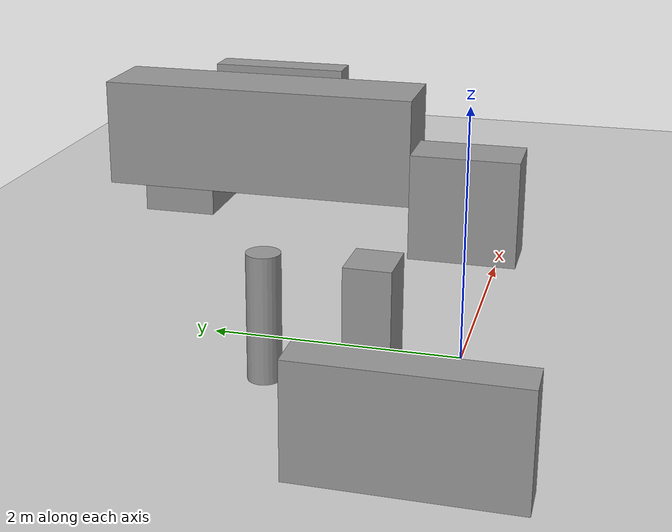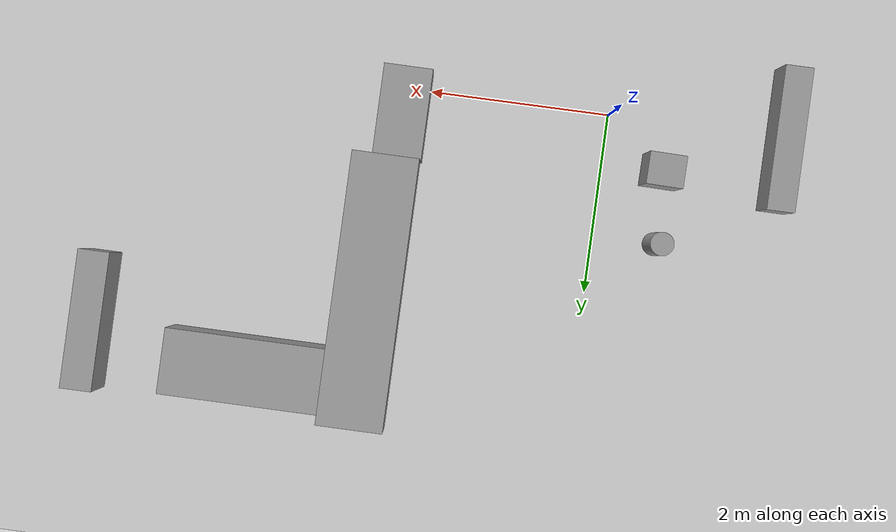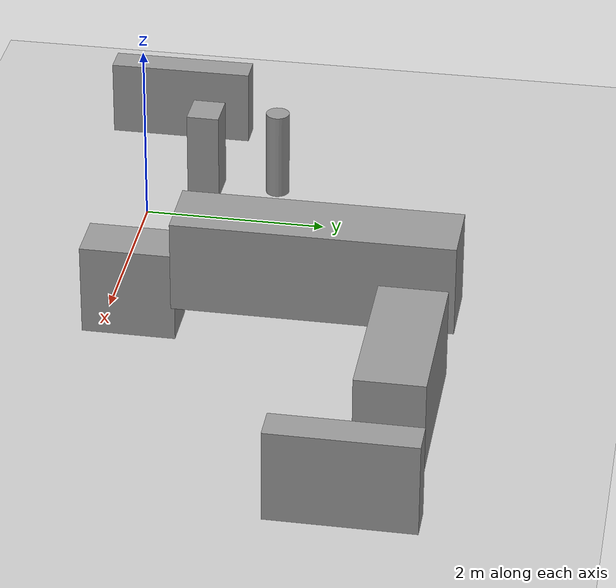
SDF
<sdf version="1.9">
 <world name="default">
  <model name="ground_plane">
   <static>true</static>
   <link name="link">
    <collision name="collision">
     <geometry><plane><normal>0 0 1</normal><size>100 100</size></plane></geometry>
     <surface><friction><ode><mu>100</mu><mu2>50</mu2></ode></friction></surface>
    </collision>
    <visual name="visual">
     <cast_shadows>false</cast_shadows>
     <geometry><plane><normal>0 0 1</normal><size>100 100</size></plane></geometry>
     <material>
      <script><uri>file://media/materials/scripts/gazebo.material</uri><name>Gazebo/Grey</name></script>
     </material>
    </visual>
   </link>
  </model>
  <model name="cma_lixo_0">
   <link name="link_1">
    <pose>0.88296200000000002 1.81586 0.5 0 0 0</pose>
    <inertial>
     <mass>0.068764400000000003</mass>
     <inertia>
      <ixx>0.00602588</ixx>
      <ixy>0</ixy>
      <ixz>0</ixz>
      <iyy>0.00602588</iyy>
      <iyz>0</iyz>
      <izz>0.00059106800000000004</izz>
     </inertia>
    </inertial>
    <visual name="visual">
     <geometry><cylinder><radius>0.13111200000000001</radius><length>1</length></cylinder></geometry>
     <material>
      <lighting>true</lighting>
      <script><uri>file://media/materials/scripts/gazebo.material</uri><name>Gazebo/Grey</name></script>
      <ambient>0.300000012 0.300000012 0.300000012 1</ambient>
      <diffuse>0.699999988 0.699999988 0.699999988 1</diffuse>
      <specular>0.00999999978 0.00999999978 0.00999999978 1</specular>
      <emissive>0 0 0 1</emissive>
     </material>
    </visual>
    <collision name="collision">
     <geometry><cylinder><radius>0.13111200000000001</radius><length>1</length></cylinder></geometry>
     <surface>
      <friction>
       <ode><mu>1</mu><mu2>1</mu2><fdir1>0 0 0</fdir1><slip1>0</slip1><slip2>0</slip2></ode>
       <torsional>
        <coefficient>1</coefficient>
        <patch_radius>0</patch_radius>
        <surface_radius>0</surface_radius>
        <use_patch_radius>true</use_patch_radius>
        <ode><slip>0</slip></ode>
       </torsional>
      </friction>
      <bounce><restitution_coefficient>0</restitution_coefficient><threshold>1000000</threshold></bounce>
      <contact>
       <collide_without_contact>false</collide_without_contact>
       <collide_without_contact_bitmask>1</collide_without_contact_bitmask>
       <collide_bitmask>1</collide_bitmask>
       <ode>
        <soft_cfm>0</soft_cfm>
        <soft_erp>0.20000000000000001</soft_erp>
        <kp>10000000000000</kp>
        <kd>1</kd>
        <max_vel>0.01</max_vel>
        <min_depth>0</min_depth>
       </ode>
       <bullet>
        <split_impulse>true</split_impulse>
        <split_impulse_penetration_threshold>-0.01</split_impulse_penetration_threshold>
        <soft_cfm>0</soft_cfm>
        <soft_erp>0.20000000000000001</soft_erp>
        <kp>10000000000000</kp>
        <kd>1</kd>
       </bullet>
      </contact>
     </surface>
    </collision>
   </link>
   <static>false</static>
   <pose>-1.6093500000000001 -0.44273099999999999 -7.9999999999999996e-06 0 0 -0.0097769999999999992</pose>
  </model>
  <model name="cma_gaveteiro_pequeno_e">
   <link name="link_1">
    <pose>9.9999999999999995e-07 -3.0000000000000001e-06 0 0 0 0</pose>
    <inertial>
     <mass>0.14553199999999999</mass>
     <inertia>
      <ixx>0.0136813</ixx>
      <ixy>0</ixy>
      <ixz>0</ixz>
      <iyy>0.0141327</iyy>
      <iyz>0</iyz>
      <izz>0.0035586599999999999</izz>
     </inertia>
    </inertial>
    <visual name="visual">
     <geometry><box><size>0.40660000000000002 0.35791800000000001 1</size></box></geometry>
     <material>
      <lighting>true</lighting>
      <script><uri>file://media/materials/scripts/gazebo.material</uri><name>Gazebo/Grey</name></script>
      <ambient>0.300000012 0.300000012 0.300000012 1</ambient>
      <diffuse>0.699999988 0.699999988 0.699999988 1</diffuse>
      <specular>0.00999999978 0.00999999978 0.00999999978 1</specular>
      <emissive>0 0 0 1</emissive>
     </material>
    </visual>
    <collision name="collision">
     <geometry><box><size>0.40660000000000002 0.35791800000000001 1</size></box></geometry>
     <surface>
      <friction>
       <ode><mu>1</mu><mu2>1</mu2><fdir1>0 0 0</fdir1><slip1>0</slip1><slip2>0</slip2></ode>
       <torsional>
        <coefficient>1</coefficient>
        <patch_radius>0</patch_radius>
        <surface_radius>0</surface_radius>
        <use_patch_radius>true</use_patch_radius>
        <ode><slip>0</slip></ode>
       </torsional>
      </friction>
      <bounce><restitution_coefficient>0</restitution_coefficient><threshold>1000000</threshold></bounce>
      <contact>
       <collide_without_contact>false</collide_without_contact>
       <collide_without_contact_bitmask>1</collide_without_contact_bitmask>
       <collide_bitmask>1</collide_bitmask>
       <ode>
        <soft_cfm>0</soft_cfm>
        <soft_erp>0.20000000000000001</soft_erp>
        <kp>10000000000000</kp>
        <kd>1</kd>
        <max_vel>0.01</max_vel>
        <min_depth>0</min_depth>
       </ode>
       <bullet>
        <split_impulse>true</split_impulse>
        <split_impulse_penetration_threshold>-0.01</split_impulse_penetration_threshold>
        <soft_cfm>0</soft_cfm>
        <soft_erp>0.20000000000000001</soft_erp>
        <kp>10000000000000</kp>
        <kd>1</kd>
       </bullet>
      </contact>
     </surface>
    </collision>
   </link>
   <static>false</static>
   <pose>-0.653034 0.55876899999999996 0.49999900000000003 -9.9999999999999974e-07 3.9999999999999998e-06 -0.015254999999999998</pose>
  </model>
  <model name="cma_armario_coz_190x70cm">
   <link name="link_0">
    <pose>5.2095799999999999 2.97661 0.5 0 0 -1.5706800000000001</pose>
    <inertial>
     <mass>1.2966</mass>
     <inertia>
      <ixx>0.45447700000000002</ixx>
      <ixy>0</ixy>
      <ixz>0</ixz>
      <iyy>0.16470599999999999</iyy>
      <iyz>0</iyz>
      <izz>0.403084</izz>
     </inertia>
    </inertial>
    <visual name="visual">
     <geometry><box><size>0.72418400000000005 1.7905800000000001 1</size></box></geometry>
     <material>
      <lighting>true</lighting>
      <script><uri>file://media/materials/scripts/gazebo.material</uri><name>Gazebo/Grey</name></script>
      <ambient>0.300000012 0.300000012 0.300000012 1</ambient>
      <diffuse>0.699999988 0.699999988 0.699999988 1</diffuse>
      <specular>0.00999999978 0.00999999978 0.00999999978 1</specular>
      <emissive>0 0 0 1</emissive>
     </material>
    </visual>
    <collision name="collision">
     <geometry><box><size>0.72418400000000005 1.7905800000000001 1</size></box></geometry>
     <surface>
      <friction>
       <ode><mu>1</mu><mu2>1</mu2><fdir1>0 0 0</fdir1><slip1>0</slip1><slip2>0</slip2></ode>
       <torsional>
        <coefficient>1</coefficient>
        <patch_radius>0</patch_radius>
        <surface_radius>0</surface_radius>
        <use_patch_radius>true</use_patch_radius>
        <ode><slip>0</slip></ode>
       </torsional>
      </friction>
      <bounce><restitution_coefficient>0</restitution_coefficient><threshold>1000000</threshold></bounce>
      <contact>
       <collide_without_contact>false</collide_without_contact>
       <collide_without_contact_bitmask>1</collide_without_contact_bitmask>
       <collide_bitmask>1</collide_bitmask>
       <ode>
        <soft_cfm>0</soft_cfm>
        <soft_erp>0.20000000000000001</soft_erp>
        <kp>10000000000000</kp>
        <kd>1</kd>
        <max_vel>0.01</max_vel>
        <min_depth>0</min_depth>
       </ode>
       <bullet>
        <split_impulse>true</split_impulse>
        <split_impulse_penetration_threshold>-0.01</split_impulse_penetration_threshold>
        <soft_cfm>0</soft_cfm>
        <soft_erp>0.20000000000000001</soft_erp>
        <kp>10000000000000</kp>
        <kd>1</kd>
       </bullet>
      </contact>
     </surface>
    </collision>
   </link>
   <model name="cma_armario_coz_100x50cm">
    <link name="link_0">
     <pose>-3.0000000000000001e-06 -3.0000000000000001e-06 0 0 0 0</pose>
     <inertial>
      <mass>0.53619300000000003</mass>
      <inertia>
       <ixx>0.089365700000000006</ixx>
       <ixy>0</ixy>
       <ixz>0</ixz>
       <iyy>0.057529299999999998</iyy>
       <iyz>0</iyz>
       <izz>0.057529299999999998</izz>
      </inertia>
     </inertial>
     <visual name="visual">
      <geometry><box><size>0.53619300000000003 1 1</size></box></geometry>
      <material>
       <lighting>true</lighting>
       <script><uri>file://media/materials/scripts/gazebo.material</uri><name>Gazebo/Grey</name></script>
       <ambient>0.300000012 0.300000012 0.300000012 1</ambient>
       <diffuse>0.699999988 0.699999988 0.699999988 1</diffuse>
       <specular>0.00999999978 0.00999999978 0.00999999978 1</specular>
       <emissive>0 0 0 1</emissive>
      </material>
     </visual>
     <collision name="collision">
      <geometry><box><size>0.53619300000000003 1 1</size></box></geometry>
      <surface>
       <friction>
        <ode><mu>1</mu><mu2>1</mu2><fdir1>0 0 0</fdir1><slip1>0</slip1><slip2>0</slip2></ode>
        <torsional>
         <coefficient>1</coefficient>
         <patch_radius>0</patch_radius>
         <surface_radius>0</surface_radius>
         <use_patch_radius>true</use_patch_radius>
         <ode><slip>0</slip></ode>
        </torsional>
       </friction>
       <bounce><restitution_coefficient>0</restitution_coefficient><threshold>1000000</threshold></bounce>
       <contact>
        <collide_without_contact>false</collide_without_contact>
        <collide_without_contact_bitmask>1</collide_without_contact_bitmask>
        <collide_bitmask>1</collide_bitmask>
        <ode>
         <soft_cfm>0</soft_cfm>
         <soft_erp>0.20000000000000001</soft_erp>
         <kp>10000000000000</kp>
         <kd>1</kd>
         <max_vel>0.01</max_vel>
         <min_depth>0</min_depth>
        </ode>
        <bullet>
         <split_impulse>true</split_impulse>
         <split_impulse_penetration_threshold>-0.01</split_impulse_penetration_threshold>
         <soft_cfm>0</soft_cfm>
         <soft_erp>0.20000000000000001</soft_erp>
         <kp>10000000000000</kp>
         <kd>1</kd>
        </bullet>
       </contact>
      </surface>
     </collision>
    </link>
    <static>false</static>
    <pose>3.8645499999999999 -0.048915 0.5 0 0 0</pose>
   </model>
   <model name="cma_armario_coz_300x70cm">
    <link name="link_0">
     <pose>3.2642799999999998 1.5085599999999999 0.5 0 0 0</pose>
     <inertial>
      <mass>2.1383299999999998</mass>
      <inertia>
       <ixx>1.732</ixx>
       <ixy>0</ixy>
       <ixz>0</ixz>
       <iyy>0.27163700000000002</iyy>
       <iyz>0</iyz>
       <izz>1.6472500000000001</izz>
      </inertia>
     </inertial>
     <visual name="visual">
      <geometry><box><size>0.72418400000000005 2.9529000000000001 1</size></box></geometry>
      <material>
       <lighting>true</lighting>
       <script><uri>file://media/materials/scripts/gazebo.material</uri><name>Gazebo/Grey</name></script>
       <ambient>0.300000012 0.300000012 0.300000012 1</ambient>
       <diffuse>0.699999988 0.699999988 0.699999988 1</diffuse>
       <specular>0.00999999978 0.00999999978 0.00999999978 1</specular>
       <emissive>0 0 0 1</emissive>
      </material>
     </visual>
     <collision name="collision">
      <geometry><box><size>0.72418400000000005 2.9529000000000001 1</size></box></geometry>
      <surface>
       <friction>
        <ode><mu>1</mu><mu2>1</mu2><fdir1>0 0 0</fdir1><slip1>0</slip1><slip2>0</slip2></ode>
        <torsional>
         <coefficient>1</coefficient>
         <patch_radius>0</patch_radius>
         <surface_radius>0</surface_radius>
         <use_patch_radius>true</use_patch_radius>
         <ode><slip>0</slip></ode>
        </torsional>
       </friction>
       <bounce><restitution_coefficient>0</restitution_coefficient><threshold>1000000</threshold></bounce>
       <contact>
        <collide_without_contact>false</collide_without_contact>
        <collide_without_contact_bitmask>1</collide_without_contact_bitmask>
        <collide_bitmask>1</collide_bitmask>
        <ode>
         <soft_cfm>0</soft_cfm>
         <soft_erp>0.20000000000000001</soft_erp>
         <kp>10000000000000</kp>
         <kd>1</kd>
         <max_vel>0.01</max_vel>
         <min_depth>0</min_depth>
        </ode>
        <bullet>
         <split_impulse>true</split_impulse>
         <split_impulse_penetration_threshold>-0.01</split_impulse_penetration_threshold>
         <soft_cfm>0</soft_cfm>
         <soft_erp>0.20000000000000001</soft_erp>
         <kp>10000000000000</kp>
         <kd>1</kd>
        </bullet>
       </contact>
      </surface>
     </collision>
    </link>
    <static>false</static>
    <pose>0.70628899999999994 0.41883100000000001 0.5 0 0 0</pose>
   </model>
   <static>false</static>
   <pose>-1.5917699999999999 0.36982399999999999 0 0 0 -0.0010590000000000003</pose>
  </model>
  <model name="cma_armario_coz_150x20cm">
   <link name="link_1">
    <pose>7.1868600000000002 2.7524700000000002 0.5 0 0 0</pose>
    <inertial>
     <mass>0.53157299999999996</mass>
     <inertia>
      <ixx>0.147651</ixx>
      <ixy>0</ixy>
      <ixz>0</ixz>
      <iyy>0.0496628</iyy>
      <iyz>0</iyz>
      <izz>0.108718</izz>
     </inertia>
    </inertial>
    <visual name="visual">
     <geometry><box><size>0.34802300000000003 1.52746 1</size></box></geometry>
     <material>
      <lighting>true</lighting>
      <script><uri>file://media/materials/scripts/gazebo.material</uri><name>Gazebo/Grey</name></script>
      <ambient>0.300000012 0.300000012 0.300000012 1</ambient>
      <diffuse>0.699999988 0.699999988 0.699999988 1</diffuse>
      <specular>0.00999999978 0.00999999978 0.00999999978 1</specular>
      <emissive>0 0 0 1</emissive>
     </material>
    </visual>
    <collision name="collision">
     <geometry><box><size>0.34802300000000003 1.52746 1</size></box></geometry>
     <surface>
      <friction>
       <ode><mu>1</mu><mu2>1</mu2><fdir1>0 0 0</fdir1><slip1>0</slip1><slip2>0</slip2></ode>
       <torsional>
        <coefficient>1</coefficient>
        <patch_radius>0</patch_radius>
        <surface_radius>0</surface_radius>
        <use_patch_radius>true</use_patch_radius>
        <ode><slip>0</slip></ode>
       </torsional>
      </friction>
      <bounce><restitution_coefficient>0</restitution_coefficient><threshold>1000000</threshold></bounce>
      <contact>
       <collide_without_contact>false</collide_without_contact>
       <collide_without_contact_bitmask>1</collide_without_contact_bitmask>
       <collide_bitmask>1</collide_bitmask>
       <ode>
        <soft_cfm>0</soft_cfm>
        <soft_erp>0.20000000000000001</soft_erp>
        <kp>10000000000000</kp>
        <kd>1</kd>
        <max_vel>0.01</max_vel>
        <min_depth>0</min_depth>
       </ode>
       <bullet>
        <split_impulse>true</split_impulse>
        <split_impulse_penetration_threshold>-0.01</split_impulse_penetration_threshold>
        <soft_cfm>0</soft_cfm>
        <soft_erp>0.20000000000000001</soft_erp>
        <kp>10000000000000</kp>
        <kd>1</kd>
       </bullet>
      </contact>
     </surface>
    </collision>
   </link>
   <static>false</static>
   <pose>-1.7943100000000001 0.26466000000000001 0 0 0 3.0000000000000001e-06</pose>
  </model>
  <model name="cma_bans_a1">
   <link name="link_0">
    <pose>-9.9999999999999995e-07 0 0 0 0 0</pose>
    <inertial>
     <mass>0.42531200000000002</mass>
     <inertia>
      <ixx>0.116443</ixx>
      <ixy>0</ixy>
      <ixz>0</ixz>
      <iyy>0.029397199999999998</iyy>
      <iyz>0</iyz>
      <izz>0.093901600000000002</izz>
     </inertia>
    </inertial>
    <visual name="visual">
     <geometry><box><size>0.31099700000000002 1.59771 0.85598300000000005</size></box></geometry>
     <material>
      <lighting>true</lighting>
      <script><uri>file://media/materials/scripts/gazebo.material</uri><name>Gazebo/Grey</name></script>
      <ambient>0.300000012 0.300000012 0.300000012 1</ambient>
      <diffuse>0.699999988 0.699999988 0.699999988 1</diffuse>
      <specular>0.00999999978 0.00999999978 0.00999999978 1</specular>
      <emissive>0 0 0 1</emissive>
     </material>
    </visual>
    <collision name="collision">
     <geometry><box><size>0.31099700000000002 1.59771 0.85598300000000005</size></box></geometry>
     <surface>
      <friction>
       <ode><mu>1</mu><mu2>1</mu2><fdir1>0 0 0</fdir1><slip1>0</slip1><slip2>0</slip2></ode>
       <torsional>
        <coefficient>1</coefficient>
        <patch_radius>0</patch_radius>
        <surface_radius>0</surface_radius>
        <use_patch_radius>true</use_patch_radius>
        <ode><slip>0</slip></ode>
       </torsional>
      </friction>
      <bounce><restitution_coefficient>0</restitution_coefficient><threshold>1000000</threshold></bounce>
      <contact>
       <collide_without_contact>false</collide_without_contact>
       <collide_without_contact_bitmask>1</collide_without_contact_bitmask>
       <collide_bitmask>1</collide_bitmask>
       <ode>
        <soft_cfm>0</soft_cfm>
        <soft_erp>0.20000000000000001</soft_erp>
        <kp>10000000000000</kp>
        <kd>1</kd>
        <max_vel>0.01</max_vel>
        <min_depth>0</min_depth>
       </ode>
       <bullet>
        <split_impulse>true</split_impulse>
        <split_impulse_penetration_threshold>-0.01</split_impulse_penetration_threshold>
        <soft_cfm>0</soft_cfm>
        <soft_erp>0.20000000000000001</soft_erp>
        <kp>10000000000000</kp>
        <kd>1</kd>
       </bullet>
      </contact>
     </surface>
    </collision>
   </link>
   <static>false</static>
   <pose>-1.9577100000000001 0.037842000000000001 0.42799199999999998 0 2.0000000000000003e-06 0</pose>
  </model>
 </world>
</sdf>
